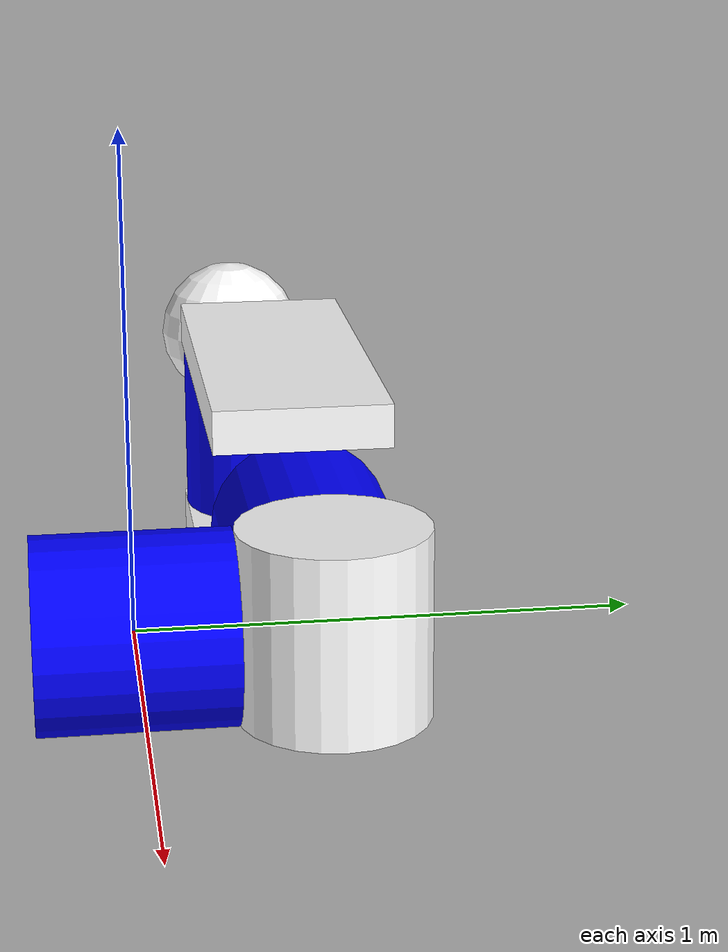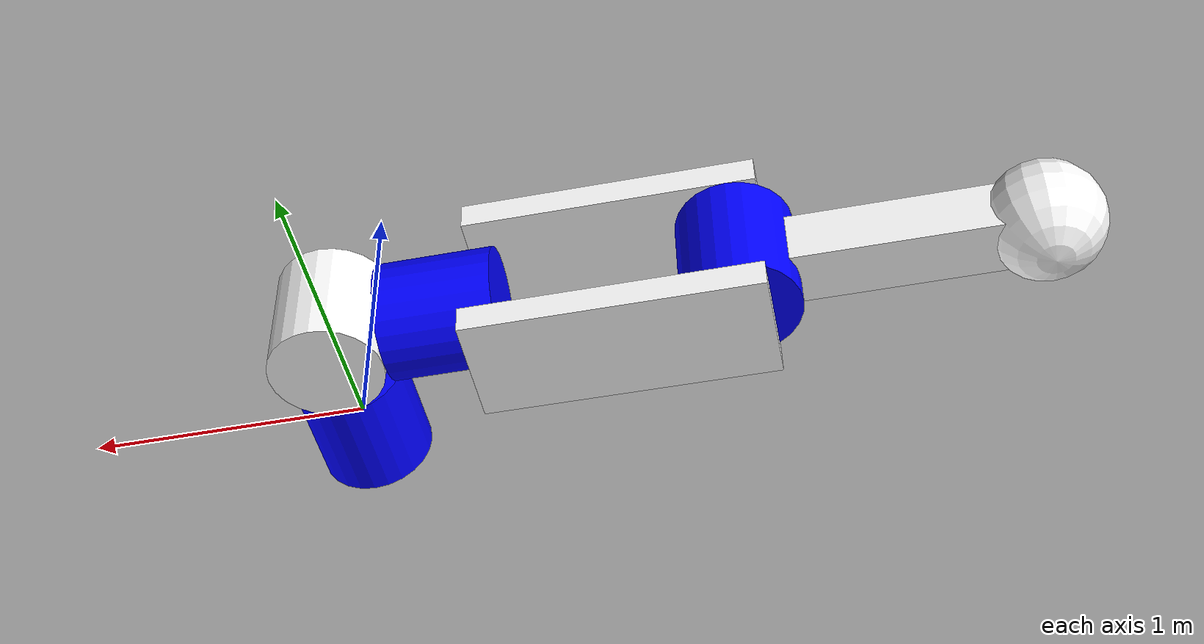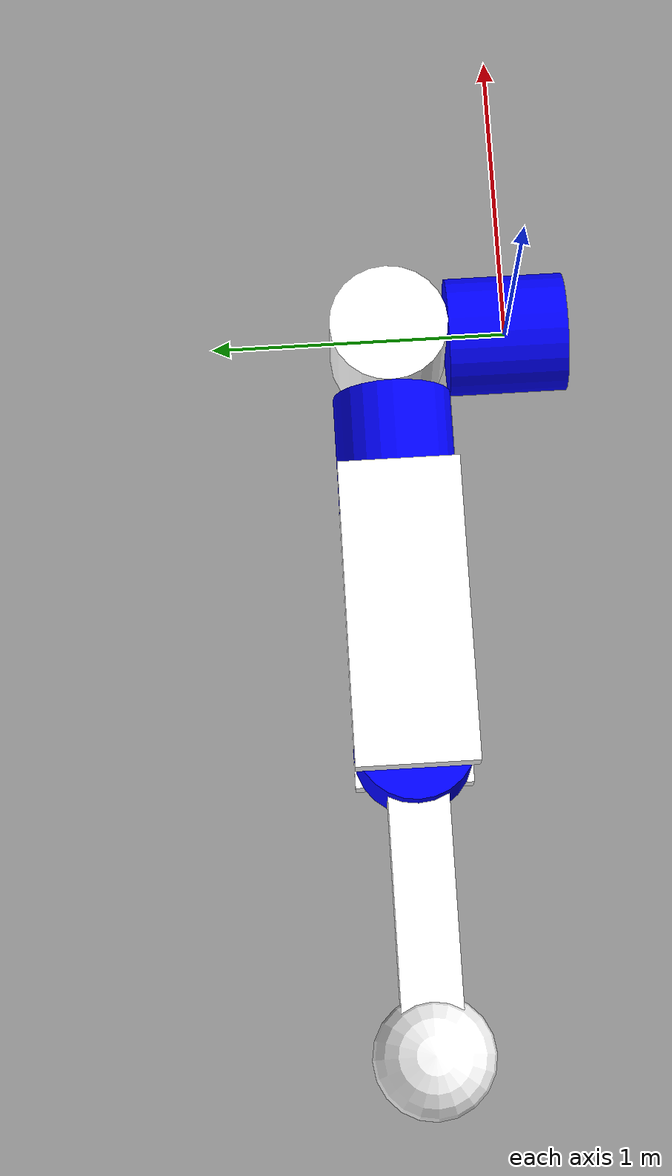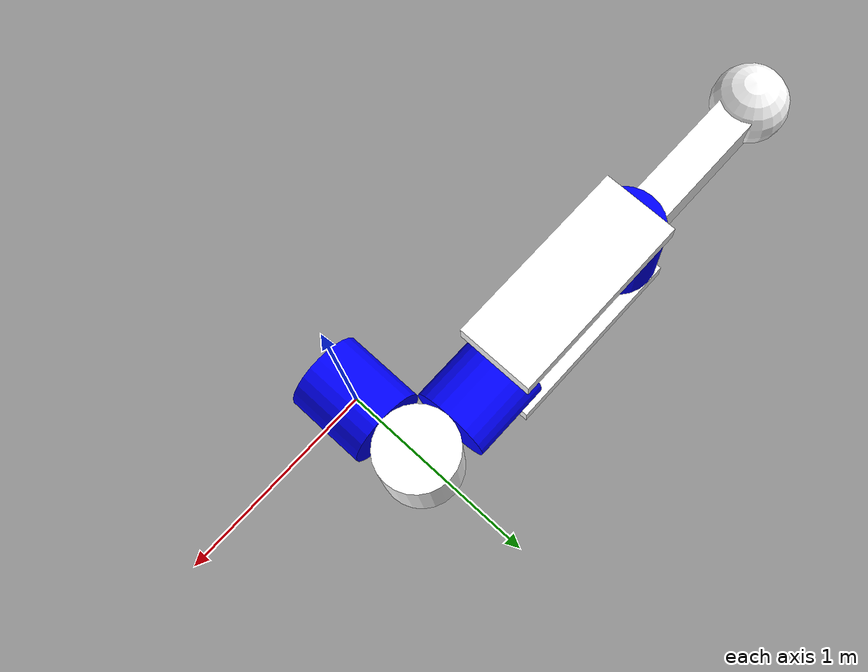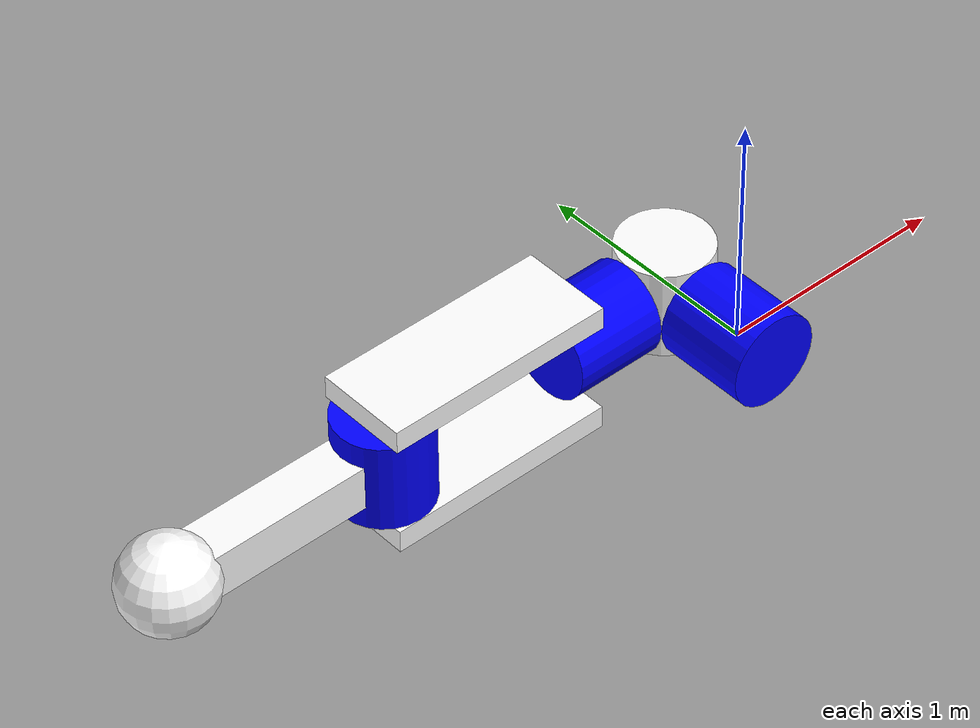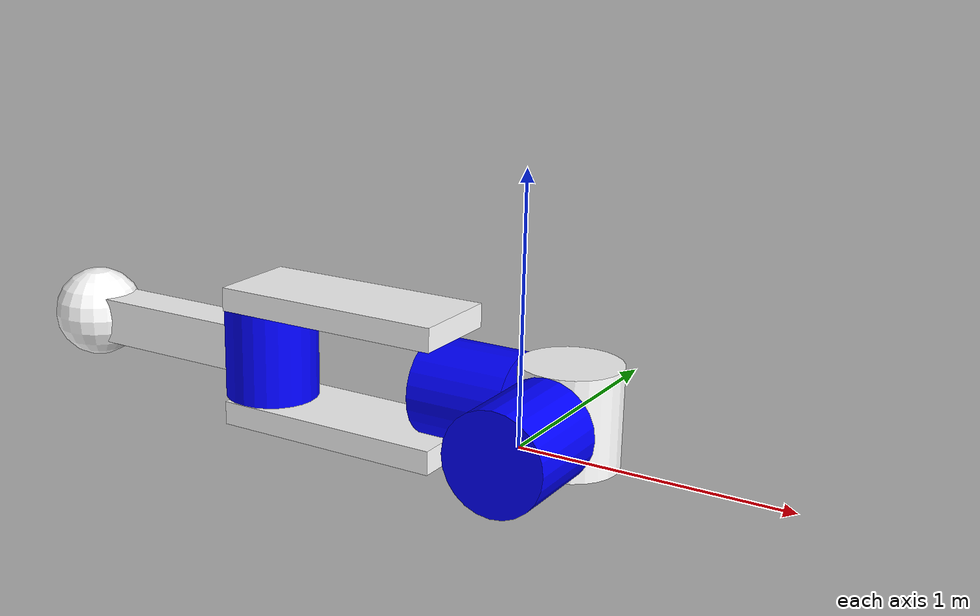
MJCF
<mujoco>
    <option timestep="0.0002" />
    <actuator>
        <motor gear="100" joint="joint_0" name="shoulder_pitch" ctrlrange="-50 50" ctrllimited="true"/>
        <motor gear="100" joint="joint_1" name="shoulder_roll" ctrlrange="-10 10" ctrllimited="true"/>
        <motor gear="100" joint="joint_2" name="shoulder_yaw" ctrlrange="-10 10" ctrllimited="true"/>
        <motor gear="100" joint="joint_3" name="elbow" ctrlrange="-10 10" ctrllimited="true"/>
    </actuator>
    <asset>
        <material name="black" rgba="0 0 0 0.5" />
        <material name="blue_" rgba="0 0 1 1" />
        <material name="green" rgba="0 1 0 1" />
        <material name="red__" rgba="1 0 0 1" />
        <material name="white" rgba="1 1 1 1" />
    </asset>
    <worldbody>
        <geom type="plane" size="10 10 0.1" pos="0 0 -5" rgba=".9 0 0 1" />
        <light diffuse=".5 .5 .5" pos="0 0 3" dir="0 0 -1" />
        <body name="pitch" pos="0 0 0">
            <joint name="joint_0" pos="0 0 0" axis="0 1 0" />
            <geom type="cylinder" size=".2 .2" pos="0 0 0" euler="90 0 0" material="blue_" />
            <body name="roll" pos="0 .4 0" euler="0 0 90">
                <joint name="joint_1" pos="0 0 0" axis="0 0 1" />
                <geom type="cylinder" size=".2 .2" pos="0 0 0" euler="0 0 0" material="white" />
                <body name="yaw" pos="0 0.4 0" euler="90 0 0">
                    <joint name="joint_2" pos="0 0 0" axis="0 0 1" />-
                    <geom type="cylinder" size=".2 .2" pos="0 0 0" euler="0 0 0" material="blue_" />
                    <geom type="box" size=".2 .05 .5" pos="0 .25 -.6" euler="0 0 0" material="white" />
                    <geom type="box" size=".2 .05 .5" pos="0 -.25 -.6" euler="0 0 0" material="white" />
                    <body name="elbow" pos="0 0 -1" euler="90 0 0">
                        <joint name="joint_3" pos="0 0 0" axis="0 0 1" />-
                        <geom type="cylinder" size=".2 .2" pos="0 0 0" euler="0 0 0" material="blue_" />
                        <geom type="box" size=".1 .1 .5" pos="0 -.5 0" euler="90 0 0" material="white" />
                        <body name="tool" pos="0 -1 0" euler="0 0 0">
                            <geom type="sphere" size="0.2" pos="0 0 0" euler="0 0 0" material="white" />
                        </body>
                    </body>
                </body>
            </body>
        </body>
    </worldbody>
</mujoco>
